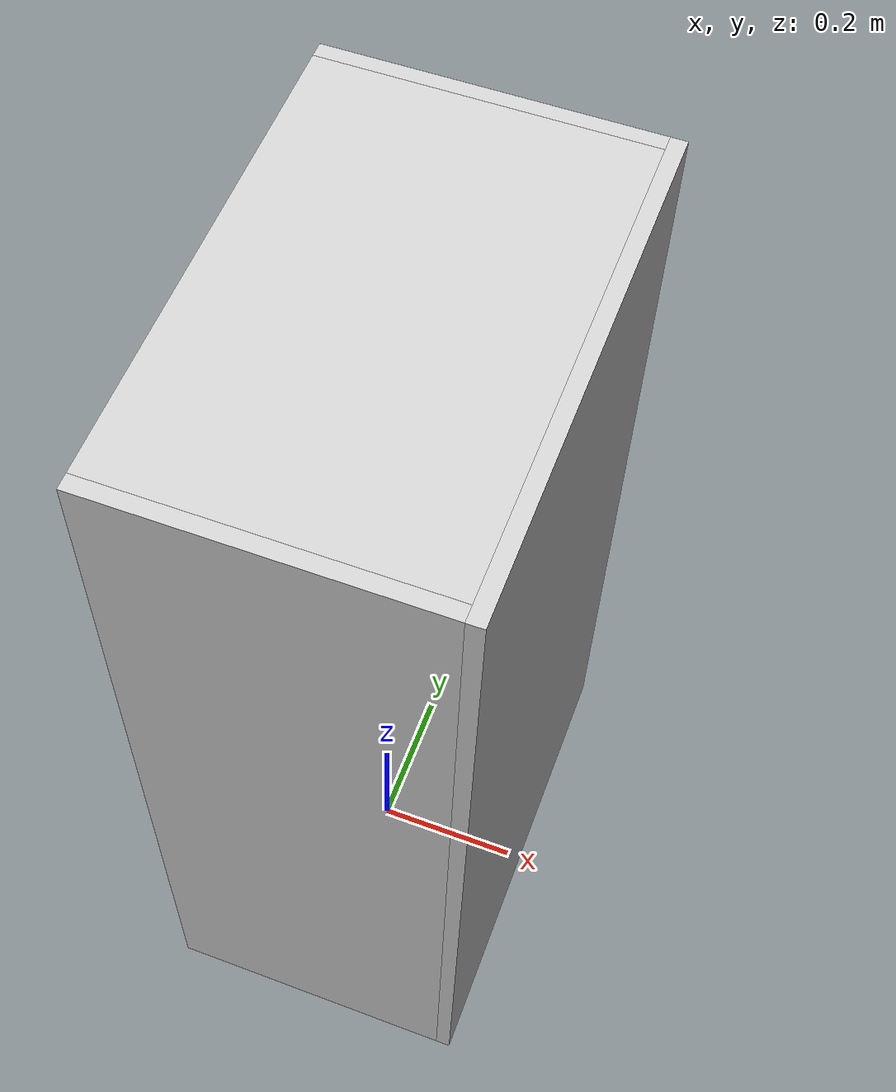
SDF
<?xml version="1.0" ?>
<sdf version="1.8">
  <model name="chair">
    <link name="link">
      <inertial>
        <mass>1.0</mass>
      </inertial>

      <collision name="top">
        <pose>0.0 0.0 1.19 0.0 0.0 0.0</pose>
        <geometry>
          <box>
            <size>0.4 0.6 0.02</size>
          </box>
        </geometry>
      </collision>

      <visual name="top_v">
        <pose>0.0 0.0 1.19 0.0 0.0 0.0</pose>
        <geometry>
          <box>
            <size>0.4 0.6 0.02</size>
          </box>
        </geometry>

        <material>
          <ambient>0.8 0.8 0.8 1</ambient>
          <diffuse>0.8 0.8 0.8 1</diffuse>
        </material>
      </visual>

      <collision name="left_side">
        <pose>0.0 0.31 0.6 0.0 0.0 0.0</pose>
        <geometry>
          <box>
            <size>0.4 0.02 1.2</size>
          </box>
        </geometry>
      </collision>

      <visual name="left_side_v">
        <pose>0.0 0.31 0.6 0.0 0.0 0.0</pose>
        <geometry>
          <box>
            <size>0.4 0.02 1.2</size>
          </box>
        </geometry>

        <material>
          <ambient>0.8 0.8 0.8 1</ambient>
          <diffuse>0.8 0.8 0.8 1</diffuse>
        </material>
      </visual>

      <collision name="right_side">
        <pose>0.0 -0.31 0.6 0.0 0.0 0.0</pose>
        <geometry>
          <box>
            <size>0.4 0.02 1.2</size>
          </box>
        </geometry>
      </collision>

      <visual name="right_side_v">
        <pose>0.0 -0.31 0.6 0.0 0.0 0.0</pose>
        <geometry>
          <box>
            <size>0.4 0.02 1.2</size>
          </box>
        </geometry>

        <material>
          <ambient>0.8 0.8 0.8 1</ambient>
          <diffuse>0.8 0.8 0.8 1</diffuse>
        </material>
      </visual>

      <collision name="bottom">
        <pose>0.0 0.0 0.01 0.0 0.0 0.0</pose>
        <geometry>
          <box>
            <size>0.4 0.6 0.02</size>
          </box>
        </geometry>
      </collision>

      <visual name="bottom_v">
        <pose>0.0 0.0 0.01 0.0 0.0 0.0</pose>
        <geometry>
          <box>
            <size>0.4 0.6 0.02</size>
          </box>
        </geometry>

        <material>
          <ambient>0.8 0.8 0.8 1</ambient>
          <diffuse>0.8 0.8 0.8 1</diffuse>
        </material>
      </visual>

      <collision name="plate1">
        <pose>0.0 0.0 0.3 0.0 0.0 0.0</pose>
        <geometry>
          <box>
            <size>0.4 0.6 0.02</size>
          </box>
        </geometry>
      </collision>

      <visual name="plate1_v">
        <pose>0.0 0.0 0.3 0.0 0.0 0.0</pose>
        <geometry>
          <box>
            <size>0.4 0.6 0.02</size>
          </box>
        </geometry>

        <material>
          <ambient>0.8 0.8 0.8 1</ambient>
          <diffuse>0.8 0.8 0.8 1</diffuse>
        </material>
      </visual>

      <collision name="plate2">
        <pose>0.0 0.0 0.6 0.0 0.0 0.0</pose>
        <geometry>
          <box>
            <size>0.4 0.6 0.02</size>
          </box>
        </geometry>
      </collision>

      <visual name="plate2_v">
        <pose>0.0 0.0 0.6 0.0 0.0 0.0</pose>
        <geometry>
          <box>
            <size>0.4 0.6 0.02</size>
          </box>
        </geometry>

        <material>
          <ambient>0.8 0.8 0.8 1</ambient>
          <diffuse>0.8 0.8 0.8 1</diffuse>
        </material>
      </visual>

      <collision name="plate3">
        <pose>0.0 0.0 0.9 0.0 0.0 0.0</pose>
        <geometry>
          <box>
            <size>0.4 0.6 0.02</size>
          </box>
        </geometry>
      </collision>

      <visual name="plate3_v">
        <pose>0.0 0.0 0.9 0.0 0.0 0.0</pose>
        <geometry>
          <box>
            <size>0.4 0.6 0.02</size>
          </box>
        </geometry>

        <material>
          <ambient>0.8 0.8 0.8 1</ambient>
          <diffuse>0.8 0.8 0.8 1</diffuse>
        </material>
      </visual>

      <collision name="back_plate">
        <pose>0.0 0.0 0.9 0.0 0.0 0.0</pose>
        <geometry>
          <box>
            <size>0.4 0.6 0.02</size>
          </box>
        </geometry>
      </collision>

      <visual name="back_plate_v">
        <pose>0.21 0.0 0.6 0.0 0.0 0.0</pose>
        <geometry>
          <box>
            <size>0.02 0.64 1.2</size>
          </box>
        </geometry>

        <material>
          <ambient>0.8 0.8 0.8 1</ambient>
          <diffuse>0.8 0.8 0.8 1</diffuse>
        </material>
      </visual>
    </link>
  </model>
</sdf>
